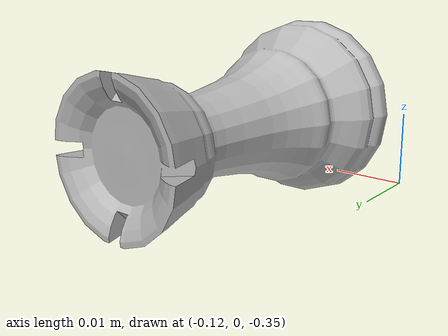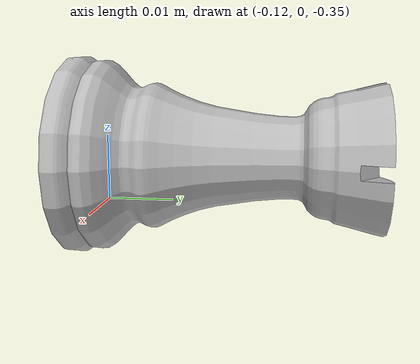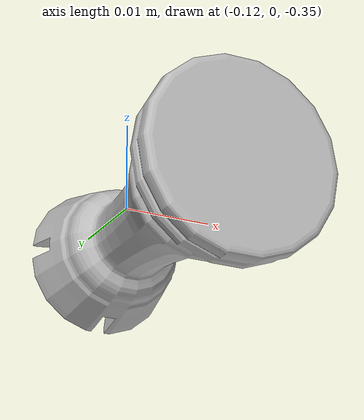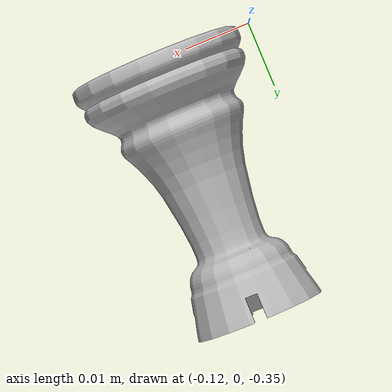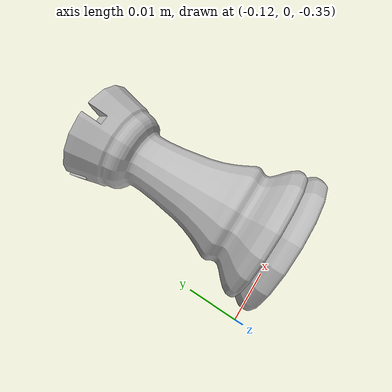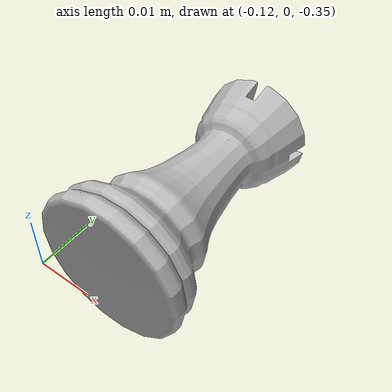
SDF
<?xml version="1.0"?>
<sdf version="1.7">
  <model name="light_rook">
    <pose>0 0 0 0 0 0</pose>
    <link name="link">
      <inertial>
        <pose>-0.10506923076923078 0.009993461538461536 -0.34030461538461537 0 0 0</pose>
        <mass>0.01795254272586254</mass>
        <inertia>
          <ixx>3.3360939938686258e-06</ixx>
          <ixy>0.0</ixy>
          <ixz>0.0</ixz>
          <iyy>1.919747699180055e-06</iyy>
          <iyz>0.0</iyz>
          <izz>3.365476166328794e-06</izz>
        </inertia>
      </inertial>
      <collision name="collision">
        <pose>-0.10506923076923078 0.019987692307692307 -0.34030461538461537 0 0 0</pose>
        <geometry>
          <box>
            <size>0.025523076923076923 0.039976923076923083 0.025135384615384615</size>
          </box>
        </geometry>
      </collision>
      <visual name="box_visual">
        <geometry>
          <mesh>
            <uri>model.obj</uri>
            <scale>0.00015384615384615385 0.00015384615384615385 0.00015384615384615385</scale>
          </mesh>
        </geometry>
      </visual>
    </link>
  </model>
</sdf>
